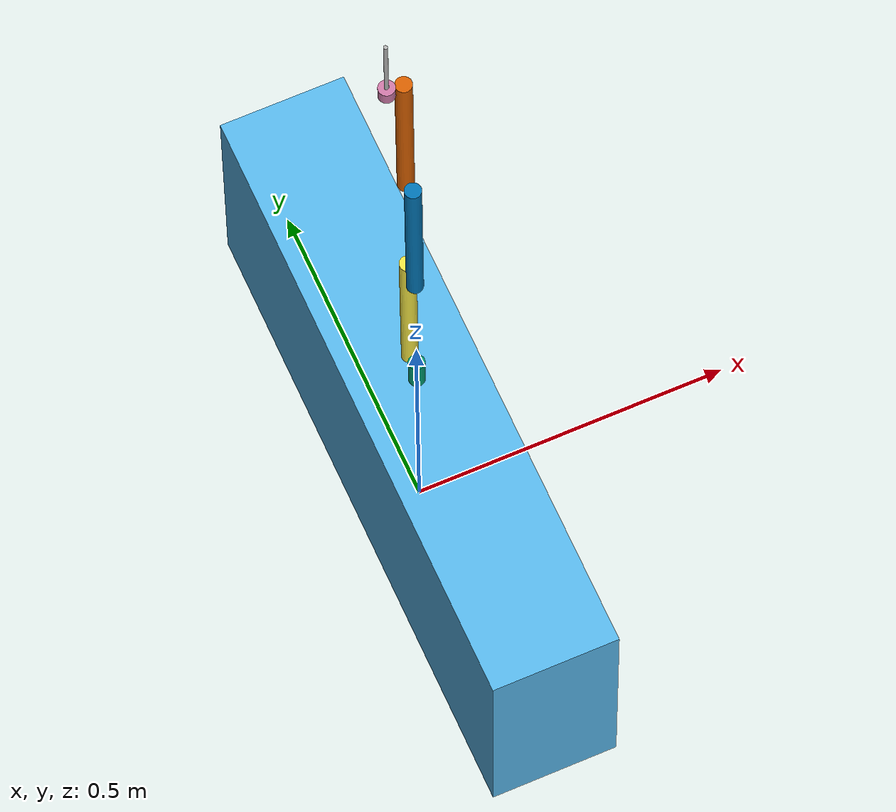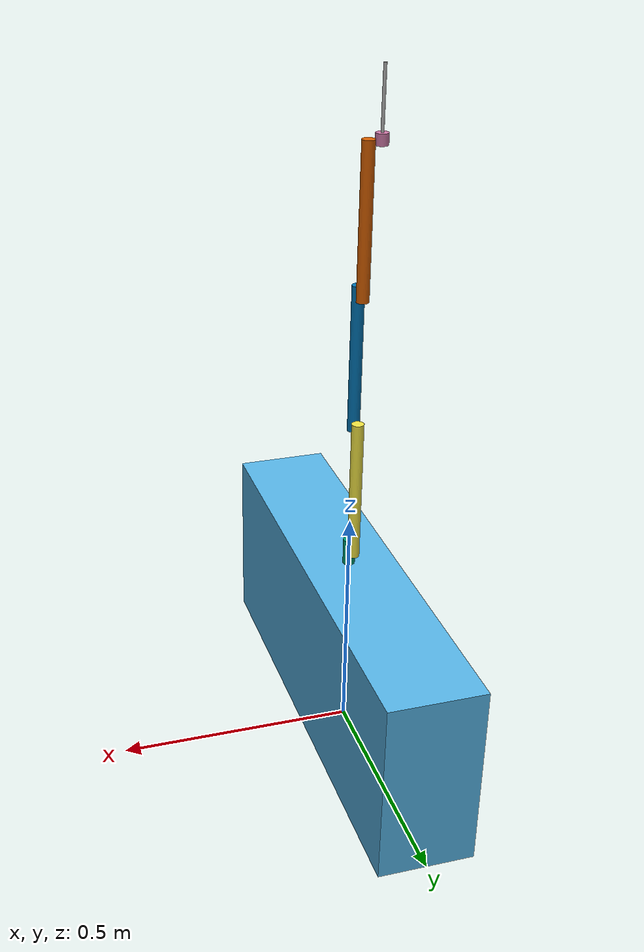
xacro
<?xml version="1.0"?>
<!-- Revolute-Revolute-Revolute Manipulator -->
<robot name="armbot" xmlns:xacro="http://www.ros.org/wiki/xacro">

  <!-- Constants for robot dimensions -->
  <xacro:property name="PI" value="3.1415926535897931"/>
  <xacro:property name="mass" value="0.2" />
  <xacro:property name="cyl_r" value="0.0127" /> <!-- link radii: 0.5 inches -->
  <xacro:property name="l0" value="0.4" />
  <xacro:property name="l1" value="0.0572" />
  <xacro:property name="l2" value="0.3048" />
  <xacro:property name="l3" value="0.3048" />
  <xacro:property name="l4" value="0.3048" />
  <xacro:property name="l5" value="0.0224" />
  <xacro:property name="swab_r" value="0.003175" />
  <xacro:property name="swab_h" value="0.12" />
  <xacro:property name="axle_offset" value="0.0125" /> <!-- Space btw top of beam and the each joint -->

  <xacro:include filename="./arm.gazebo"/>

  <link name="world"/>

  <joint name="joint0" type="fixed">
    <origin xyz="0 0 0" rpy="0 0 0"/>
    <parent link="world"/>
    <child link="link0"/>
  </joint>

  <link name="link0">
    <collision>
      <origin xyz="0 0 ${l0/2}" rpy="0 0 0"/>
      <geometry>
        <box size="0.2 1 ${l0}" />
      </geometry>
    </collision>

    <visual>
      <origin xyz="0 0 ${l0/2}" rpy="0 0 0" />
      <geometry>
        <box size="0.2 1 ${l0}" />
      </geometry>
    </visual>

    <inertial>
      <origin xyz="0 0 ${l0/2}" rpy="0 0 0"/>
      <mass value="1"/>
      <inertia ixx="100"  ixy="0"  ixz="0" iyy="100" iyz="0" izz="100" />
    </inertial>
  </link>

  <joint name="joint1" type="prismatic">
    <parent link="link0" />
    <child link="link1" />
    <axis xyz="0 1 0"/>
    <origin xyz="0 0 ${l0}"/>
    <limit effort="10" velocity="1.0" lower="-1" upper="1" />
    <dynamics damping="0.7"/>
  </joint>

  <transmission name="joint1_trans">
    <type>transmission_interface/SimpleTransmission</type>
    <actuator name="joint1_motor">
      <mechanicalReduction>300</mechanicalReduction>
    </actuator>
    <joint name="joint1">
      <hardwareInterface>PositionJointInterface</hardwareInterface>
    </joint>
  </transmission>

  <link name="link1">
    <collision>
      <origin xyz="0 0 ${l1/2}" rpy="0 0 0"/>
      <geometry>
        <cylinder radius="${cyl_r}" length="${l1}"/>
      </geometry>
    </collision>

    <visual>
      <origin xyz="0 0 ${l1/2}" rpy="0 0 0"/>
      <geometry>
        <cylinder radius="${cyl_r}" length="${l1}"/>
      </geometry>
    </visual>

    <inertial>
      <origin xyz="0 0 ${l1/2}" rpy="0 0 0"/>
      <mass value="${mass}"/>
      <inertia
	  ixx="${(3*cyl_r*cyl_r + l1*l1)*mass/12.0}" ixy="0.0" ixz="0.0"
	  iyy="${(3*cyl_r*cyl_r + l1*l1)*mass/12.0}" iyz="0.0"
	  izz="${cyl_r*cyl_r*mass/2.0}"/>
    </inertial>
  </link>

  <joint name="joint2" type="continuous">
    <parent link="link1"/>
    <child link="link2"/>
    <axis xyz="0 -1 0"/>
    <origin xyz="0 ${2*cyl_r} ${l1 - axle_offset}" rpy="0 0 0"/>
    <dynamics damping="0.7"/>
  </joint>

  <transmission name="joint2_trans">
    <type>transmission_interface/SimpleTransmission</type>
    <actuator name="joint2_motor">
      <mechanicalReduction>300</mechanicalReduction>
    </actuator>
    <joint name="joint2">
      <hardwareInterface>PositionJointInterface</hardwareInterface>
    </joint>
  </transmission>

  <link name="link2">
    <collision>
      <origin xyz="0 0 ${l2/2 - axle_offset}" rpy="0 0 0"/>
      <geometry>
        <cylinder radius="${cyl_r}" length="${l2}"/>
      </geometry>
    </collision>

    <visual>
      <origin xyz="0 0 ${l2/2 - axle_offset}" rpy="0 0 0"/>
      <geometry>
        <cylinder radius="${cyl_r}" length="${l2}"/>
      </geometry>
    </visual>

    <inertial>
      <origin xyz="0 0 ${l2/2 - axle_offset}" rpy="0 0 0"/>
      <mass value="${mass}"/>
      <inertia
	  ixx="${(3*cyl_r*cyl_r + l2*l2)*mass/12.0}" ixy="0.0" ixz="0.0"
	  iyy="${(3*cyl_r*cyl_r + l2*l2)*mass/12.0}" iyz="0.0"
	  izz="${cyl_r*cyl_r*mass/2.0}"/>
    </inertial>
  </link>

  <joint name="joint3" type="continuous">
    <parent link="link2"/>
    <child link="link3"/>
    <origin xyz="0 ${-2*cyl_r} ${l2 - 2*axle_offset}" rpy="0 0 0"/>
    <axis xyz="0 -1 0"/>
    <dynamics damping="0.7"/>
  </joint>

  <transmission name="joint3_trans">
    <type>transmission_interface/SimpleTransmission</type>
    <actuator name="joint3_motor">
      <mechanicalReduction>300</mechanicalReduction>
    </actuator>
    <joint name="joint3">
      <hardwareInterface>PositionJointInterface</hardwareInterface>
    </joint>
  </transmission>

  <link name="link3">
    <collision>
      <origin xyz="0 0 ${l3/2 - axle_offset}" rpy="0 0 0"/>
      <geometry>
        <cylinder radius="${cyl_r}" length="${l3}"/>
      </geometry>
    </collision>

    <visual>
      <origin xyz="0 0 ${l3/2 - axle_offset}" rpy="0 0 0"/>
      <geometry>
        <cylinder radius="${cyl_r}" length="${l3}"/>
      </geometry>
    </visual>

    <inertial>
      <origin xyz="0 0 ${l3/2 - axle_offset}" rpy="0 0 0"/>
      <mass value="${mass}"/>
      <inertia
	  ixx="${(3*cyl_r*cyl_r + l3*l3)*mass/12.0}" ixy="0.0" ixz="0.0"
	  iyy="${(3*cyl_r*cyl_r + l3*l3)*mass/12.0}" iyz="0.0"
	  izz="${cyl_r*cyl_r*mass/2.0}"/>
    </inertial>
  </link>

  <joint name="joint4" type="continuous">
    <parent link="link3"/>
    <child link="link4"/>
    <origin xyz="0 ${2*cyl_r} ${l3 - 2*axle_offset}" rpy="0 0 0"/>
    <axis xyz="0 -1 0"/>
    <dynamics damping="0.7"/>
  </joint>

  <transmission name="joint4_trans">
    <type>transmission_interface/SimpleTransmission</type>
    <actuator name="joint4_motor">
      <mechanicalReduction>300</mechanicalReduction>
    </actuator>
    <joint name="joint4">
      <hardwareInterface>PositionJointInterface</hardwareInterface>
    </joint>
  </transmission>

  <link name="link4">
    <collision>
      <origin xyz="0 0 ${l4/2 - axle_offset}" rpy="0 0 0"/>
      <geometry>
        <cylinder radius="${cyl_r}" length="${l4}"/>
      </geometry>
    </collision>

    <visual>
      <origin xyz="0 0 ${l4/2 - axle_offset}" rpy="0 0 0"/>
      <geometry>
        <cylinder radius="${cyl_r}" length="${l4}"/>
      </geometry>
    </visual>

    <inertial>
      <origin xyz="0 0 ${l4/2 - axle_offset}" rpy="0 0 0"/>
      <mass value="${mass}"/>
      <inertia
	  ixx="${(3*cyl_r*cyl_r + l4*l4)*mass/12.0}" ixy="0.0" ixz="0.0"
	  iyy="${(3*cyl_r*cyl_r + l4*l4)*mass/12.0}" iyz="0.0"
	  izz="${cyl_r*cyl_r*mass/2.0}"/>
    </inertial>
  </link>

  <joint name="joint5" type="continuous">
    <parent link="link4"/>
    <origin xyz="${-2*cyl_r} 0 ${l4 - axle_offset}" rpy="0 0 0"/>
    <axis xyz="-1 0 0"/>
    <child link="link5"/>
  </joint>

  <transmission name="joint5_trans">
    <type>transmission_interface/SimpleTransmission</type>
    <actuator name="joint5_motor">
      <mechanicalReduction>300</mechanicalReduction>
    </actuator>
    <joint name="joint5">
      <hardwareInterface>PositionJointInterface</hardwareInterface>
    </joint>
  </transmission>

  <link name="link5">
    <collision>
      <origin xyz="0 0 ${l5/2 - axle_offset}" rpy="0 0 0"/>
      <geometry>
        <cylinder radius="${cyl_r}" length="${l5}"/>
      </geometry>
    </collision>

    <visual>
      <origin xyz="0 0 ${l5/2 - axle_offset}" rpy="0 0 0"/>
      <geometry>
        <cylinder radius="${cyl_r}" length="${l5}"/>
      </geometry>
    </visual>

    <inertial>
      <origin xyz="0 0 ${l5/2 - axle_offset}" rpy="0 0 0"/>
      <mass value="${mass}"/>
      <inertia
	  ixx="${(3*cyl_r*cyl_r + l5*l5)*mass/12.0}" ixy="0.0" ixz="0.0"
	  iyy="${(3*cyl_r*cyl_r + l5*l5)*mass/12.0}" iyz="0.0"
	  izz="${cyl_r*cyl_r*mass/2.0}"/>
    </inertial>
  </link>

  <joint name="joint6" type="continuous">
    <parent link="link5"/>
    <origin xyz="0 0 ${l5 - axle_offset}" rpy="0 0 0"/>
    <axis xyz="0 0 1"/>
    <child link="swab_link"/>
  </joint>

  <transmission name="joint6_trans">
    <type>transmission_interface/SimpleTransmission</type>
    <actuator name="joint6_motor">
      <mechanicalReduction>300</mechanicalReduction>
    </actuator>
    <joint name="joint6">
      <hardwareInterface>PositionJointInterface</hardwareInterface>
    </joint>
  </transmission>

  <link name="swab_link">
    <collision>
      <origin xyz="0 0 ${swab_h/2}" rpy="0 0 0"/>
      <geometry>
        <cylinder radius="${swab_r}" length="${swab_h}"/>
      </geometry>
    </collision>

    <visual>
      <origin xyz="0 0 ${swab_h/2}" rpy="0 0 0"/>
      <geometry>
        <cylinder radius="${swab_r}" length="${swab_h}"/>
      </geometry>
    </visual>

    <inertial>
      <origin xyz="0 0 ${swab_h/2}" rpy="0 0 0"/>
      <mass value="${mass}"/>
      <inertia
	  ixx="${(3*swab_r*swab_r + swab_h*swab_h)*mass/12.0}" ixy="0.0" ixz="0.0"
	  iyy="${(3*swab_r*swab_r + swab_h*swab_h)*mass/12.0}" iyz="0.0"
	  izz="${swab_r*swab_r*mass/2.0}"/>
    </inertial>
  </link>
</robot>
